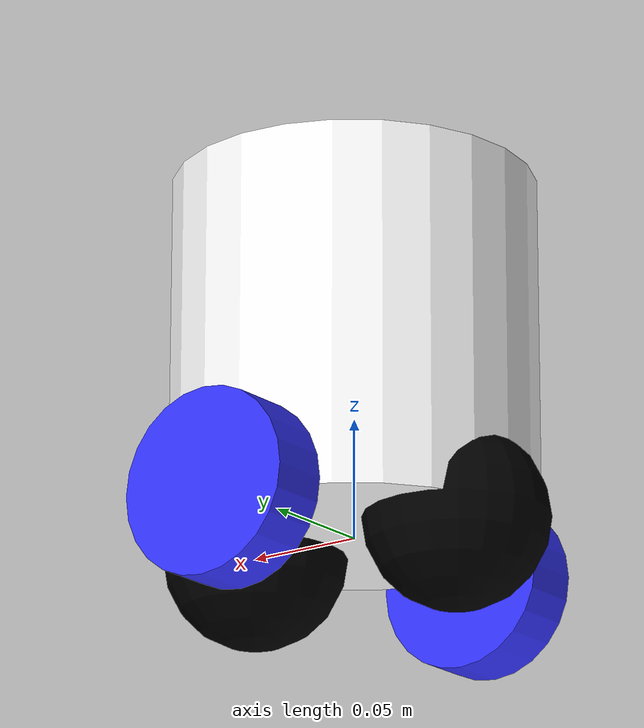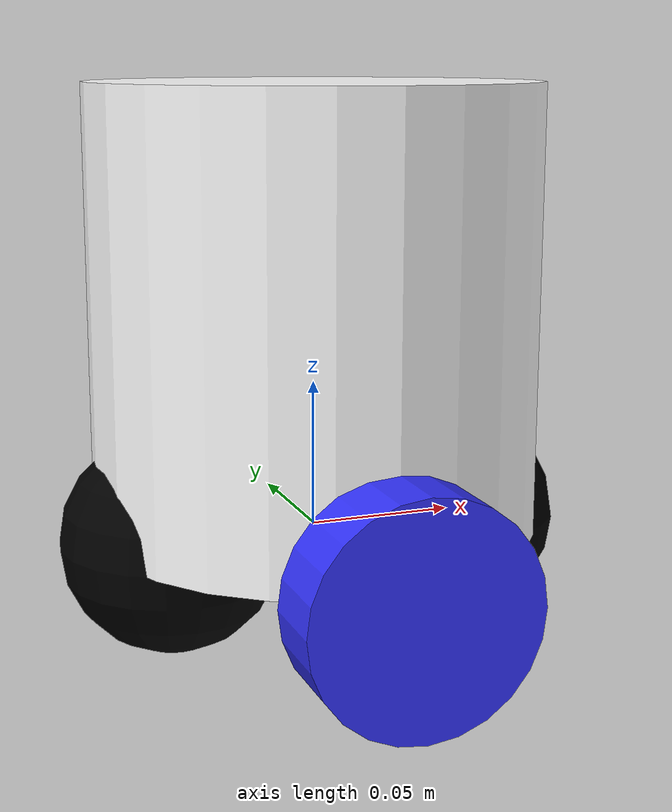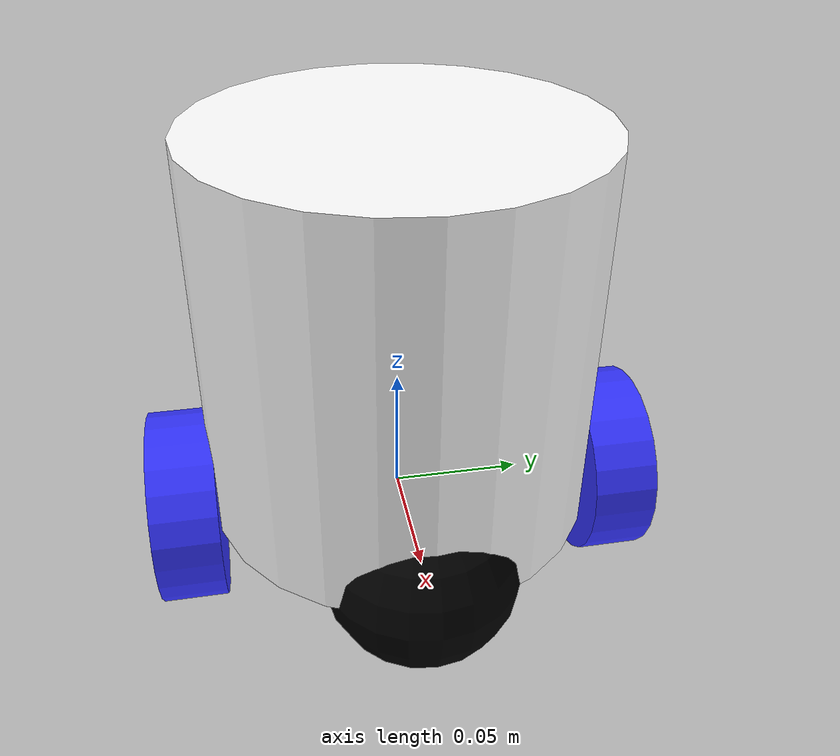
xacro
<?xml version="1.0"?>
<robot xmlns:xacro="http://www.ros.org/wiki/xacro" >

    <xacro:include filename="inertial_macros.xacro"/>

    <material name="white">
        <color rgba="1 1 1 1" />
    </material>

    <material name="orange">
        <color rgba="1 0.3 0.1 1"/>
    </material>

    <material name="blue">
        <color rgba="0.2 0.2 1 1"/>
    </material>

    <material name="black">
        <color rgba="0 0 0 1"/>
    </material>

    <material name="red">
        <color rgba="1 0 0 1"/>
    </material>

    <!-- BASE LINK -->

    <link name="base_link">

    </link>

    <!-- CHASSIS LINK -->

    <joint name="chassis_joint" type="fixed">
        <parent link="base_link"/>
        <child link="chassis"/>
        <origin xyz="0.0 0.0 0.0"/>
    </joint>

    <link name="chassis">
        <visual>
            <origin xyz="0 0 0.075"/>
            <geometry>
                <cylinder radius="0.075" length="0.15"/>
            </geometry>
            <material name="white"/>
        </visual>
        <collision>
            <origin xyz="0 0 0.075"/>
            <geometry>
                <cylinder radius="0.075" length="0.15"/>
            </geometry>
        </collision>
        <xacro:inertial_cylinder mass="1.0" length="0.15" radius="0.075">
            <origin xyz="0 0 0" rpy="0 0 0"/>
        </xacro:inertial_cylinder>
    </link>

    <gazebo reference="chassis">
        <material>Gazebo/White</material>
    </gazebo>

    <!-- LEFT WHEEL LINK -->

    <joint name="left_wheel_joint" type="continuous">
        <parent link="base_link"/>
        <child link="left_wheel"/>
        <origin xyz="0 0.085 0" rpy="-${pi/2} 0 0" />
        <axis xyz="0 0 1"/>
    </joint>

    <link name="left_wheel">
        <visual>
            <geometry>
                <cylinder radius="0.0375" length="0.025"/>
            </geometry>
            <material name="blue"/>
        </visual>
        <collision>
            <geometry>
                <cylinder radius="0.0375" length="0.025"/>
            </geometry>
        </collision>
        <xacro:inertial_cylinder mass="0.05" length="0.025" radius="0.0375">
            <origin xyz="0 0 0" rpy="0 0 0"/>
        </xacro:inertial_cylinder>
    </link>

    <gazebo reference="left_wheel">
        <material>Gazebo/Blue</material>
    </gazebo>

    <!-- RIGHT WHEEL LINK -->

    <joint name="right_wheel_joint" type="continuous">
        <parent link="base_link"/>
        <child link="right_wheel"/>
        <origin xyz="0 -0.085 0" rpy="${pi/2} 0 0" />
        <axis xyz="0 0 -1"/>
    </joint>

    <link name="right_wheel">
        <visual>
            <geometry>
                <cylinder radius="0.0375" length="0.025"/>
            </geometry>
            <material name="blue"/>
        </visual>
        <collision>
            <geometry>
                <cylinder radius="0.0375" length="0.025"/>
            </geometry>
        </collision>
        <xacro:inertial_cylinder mass="0.05" length="0.025" radius="0.0375">
            <origin xyz="0 0 0" rpy="0 0 0"/>
        </xacro:inertial_cylinder>
    </link>

    <gazebo reference="right_wheel">
        <material>Gazebo/Blue</material>
    </gazebo>

    <!-- CASTER WHEEL LINK FRONT -->

    <joint name="caster_wheel_joint_front" type="fixed">
        <parent link="chassis"/>
        <child link="caster_wheel_front"/>
        <origin xyz="0.05 0 0"/>
    </joint>

    <link name="caster_wheel_front">
        <visual>
            <geometry>
                <sphere radius="0.0375"/>
            </geometry>
            <material name="black"/>
        </visual>
        <collision>
            <geometry>
                <sphere radius="0.0375"/>
            </geometry>
        </collision>
        <xacro:inertial_sphere mass="0.05" radius="0.0375">
            <origin xyz="0 0 0" rpy="0 0 0"/>
        </xacro:inertial_sphere>
    </link>

    <gazebo reference="caster_wheel_front">
        <material>Gazebo/Black</material>
        <mu1 value="0.001"/>
        <mu2 value="0.001"/>
    </gazebo>

     <!-- CASTER WHEEL LINK BACK -->

     <joint name="caster_wheel_joint_back" type="fixed">
        <parent link="chassis"/>
        <child link="caster_wheel_back"/>
        <origin xyz="-0.05 0 0"/>
    </joint>

    <link name="caster_wheel_back">
        <visual>
            <geometry>
                <sphere radius="0.0375"/>
            </geometry>
            <material name="black"/>
        </visual>
        <collision>
            <geometry>
                <sphere radius="0.0375"/>
            </geometry>
        </collision>
        <xacro:inertial_sphere mass="0.05" radius="0.0375">
            <origin xyz="0 0 0" rpy="0 0 0"/>
        </xacro:inertial_sphere>
    </link>

    <gazebo reference="caster_wheel_back">
        <material>Gazebo/Black</material>
        <mu1 value="0.001"/>
        <mu2 value="0.001"/>
    </gazebo>

</robot>

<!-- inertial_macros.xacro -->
<robot xmlns:xacro="http://www.ros.org/wiki/xacro" >

    <!-- Specify some standard inertial calculations https://en.wikipedia.org/wiki/List_of_moments_of_inertia -->
    <!-- These make use of xacro's mathematical functionality -->

    <xacro:macro name="inertial_sphere" params="mass radius *origin">
        <inertial>
            <xacro:insert_block name="origin"/>
            <mass value="${mass}" />
            <inertia ixx="${(2/5) * mass * (radius*radius)}" ixy="0.0" ixz="0.0"
                    iyy="${(2/5) * mass * (radius*radius)}" iyz="0.0"
                    izz="${(2/5) * mass * (radius*radius)}" />
        </inertial>
    </xacro:macro>

    <xacro:macro name="inertial_cylinder" params="mass length radius *origin">
        <inertial>
            <xacro:insert_block name="origin"/>
            <mass value="${mass}" />
            <inertia ixx="${(1/12) * mass * (3*radius*radius + length*length)}" ixy="0.0" ixz="0.0"
                    iyy="${(1/12) * mass * (3*radius*radius + length*length)}" iyz="0.0"
                    izz="${(1/2) * mass * (radius*radius)}" />
        </inertial>
    </xacro:macro>

</robot>
